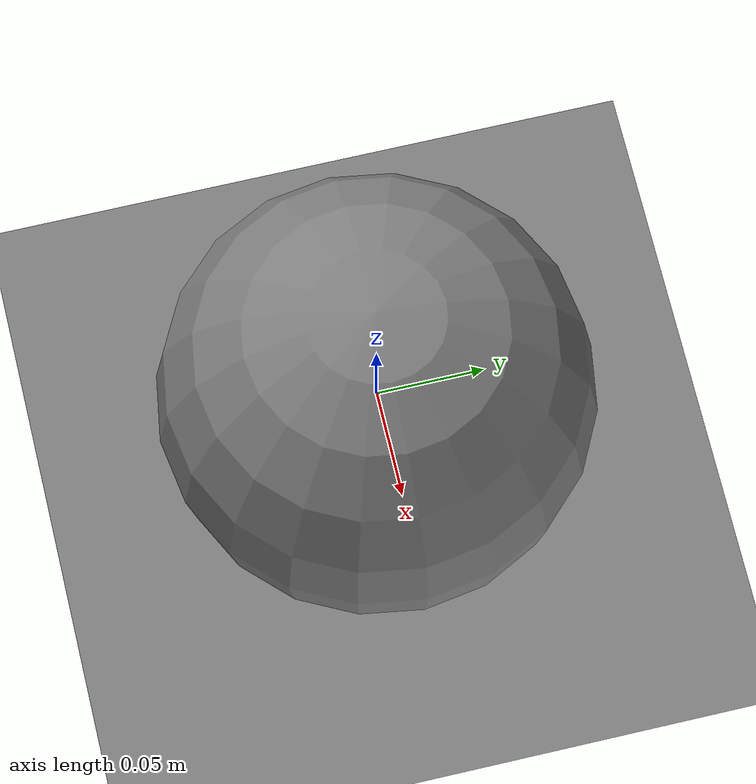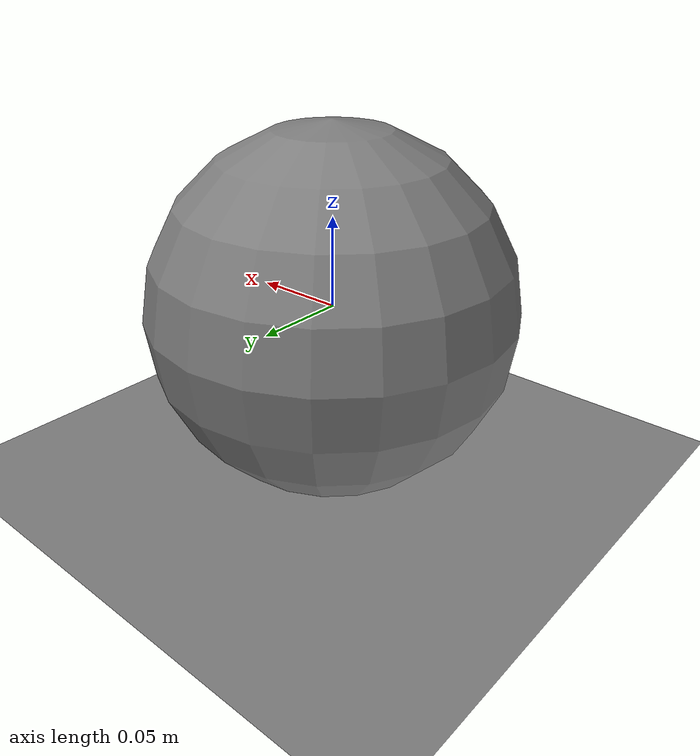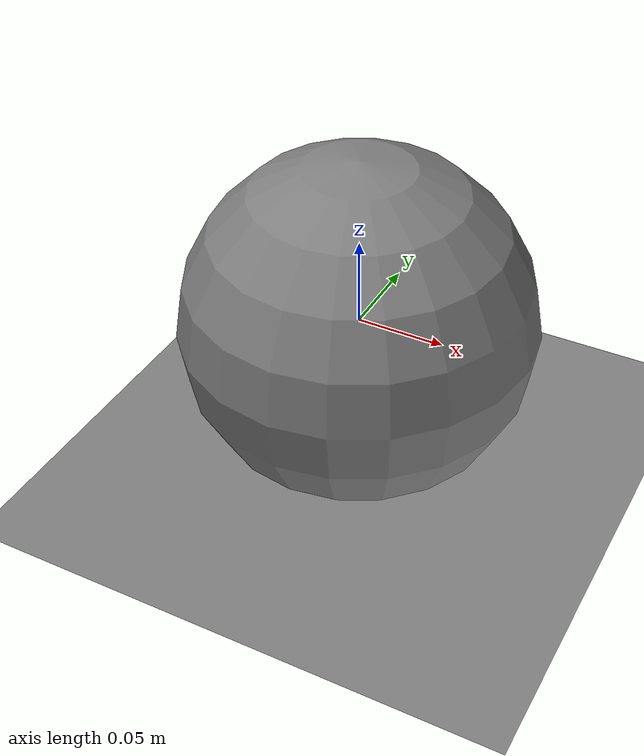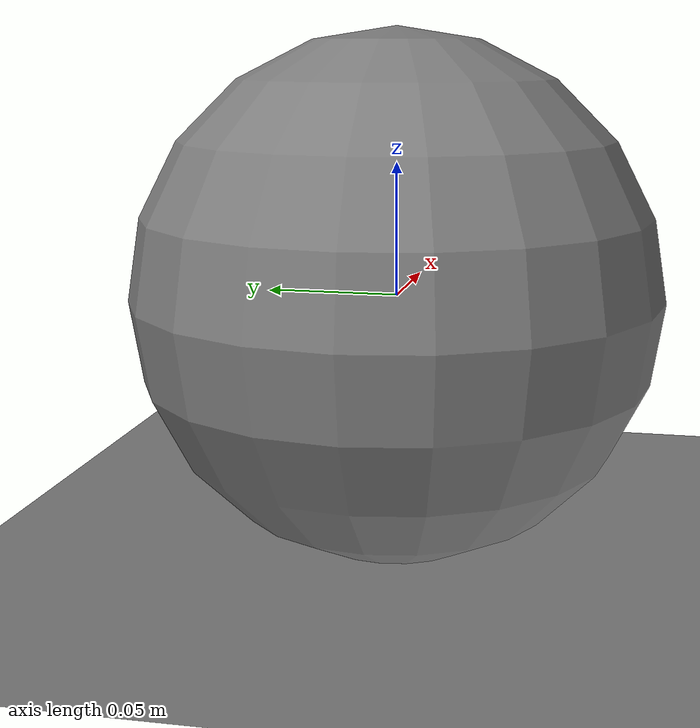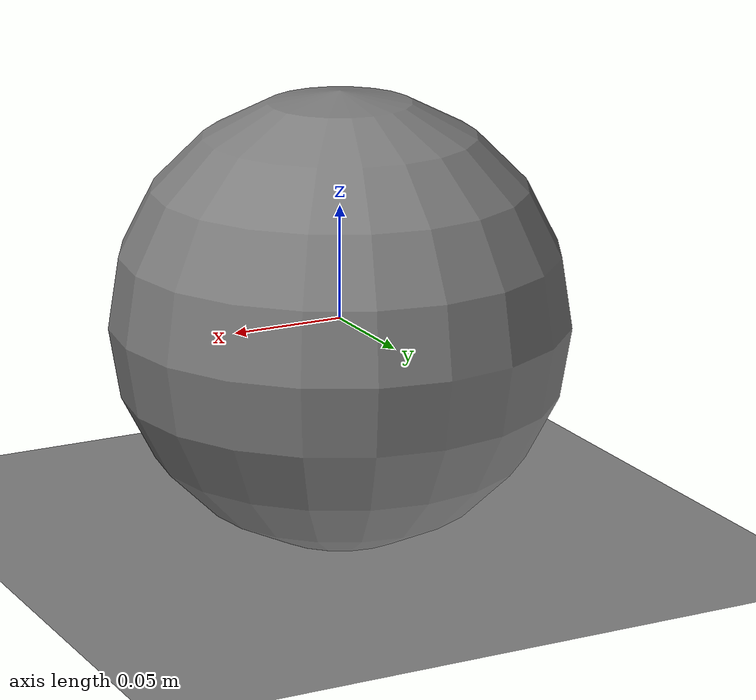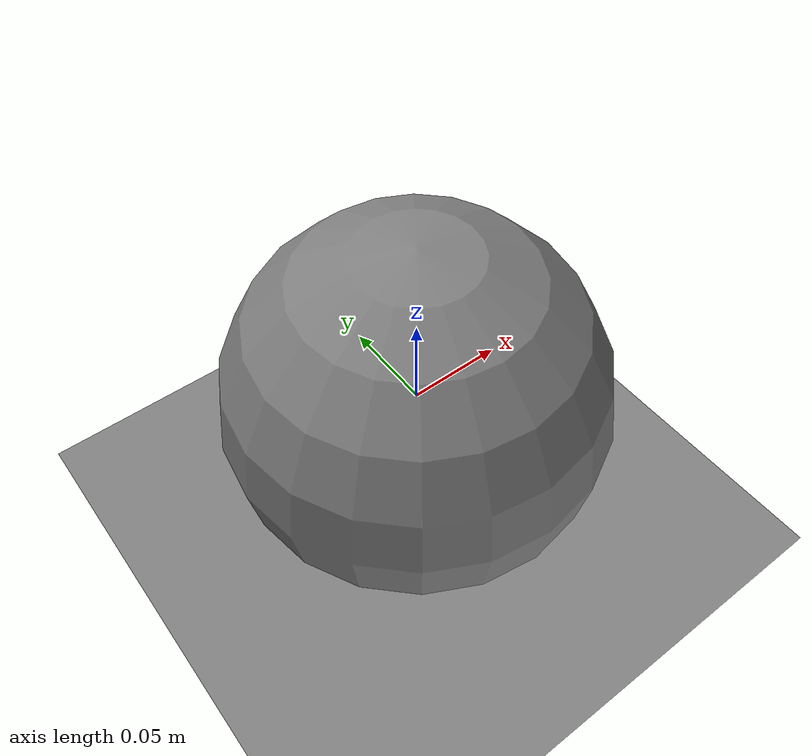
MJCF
<mujoco><option timestep=".0005" integrator="Euler" gravity="0 0 -9.81" solver="Newton" cone="pyramidal" jacobian="auto"><flag constraint="enable" warmstart="disable" island="disable" /></option><worldbody><body name="carrier_0"><freejoint /><inertial pos="0 0 0" mass=".05" diaginertia=".0002 .0002 .0002" /><body><joint name="j" damping=".01" limited="true" frictionloss=".002" range="-1 1" /><geom size=".1" mass="1" /></body></body><geom name="controller_floor" type="plane" size="3 3 .1" pos="0 0 -.095" friction=".6 .01 .001" condim="3" /></worldbody><actuator><pid joint="j" kp=".003" ki=".001" input="pos vel ff" /><pid joint="j" kp=".003" ki=".001" input="pos vel ff" /><pid joint="j" kp=".003" ki=".001" input="pos vel ff" /><pid joint="j" kp=".003" ki=".001" input="pos vel ff" /><pid joint="j" kp=".003" ki=".001" input="pos vel ff" /><pid joint="j" kp=".003" ki=".001" input="pos vel ff" /><pid joint="j" kp=".003" ki=".001" input="pos vel ff" /><pid joint="j" kp=".003" ki=".001" input="pos vel ff" /><pid joint="j" kp=".003" ki=".001" input="pos vel ff" /><pid joint="j" kp=".003" ki=".001" input="pos vel ff" /><pid joint="j" kp=".003" ki=".001" input="pos vel ff" /><pid joint="j" kp=".003" ki=".001" input="pos vel ff" /><pid joint="j" kp=".003" ki=".001" input="pos vel ff" /><pid joint="j" kp=".003" ki=".001" input="pos vel ff" /><pid joint="j" kp=".003" ki=".001" input="pos vel ff" /><pid joint="j" kp=".003" ki=".001" input="pos vel ff" /><pid joint="j" kp=".003" ki=".001" input="pos vel ff" /><pid joint="j" kp=".003" ki=".001" input="pos vel ff" /><pid joint="j" kp=".003" ki=".001" input="pos vel ff" /><pid joint="j" kp=".003" ki=".001" input="pos vel ff" /><pid joint="j" kp=".003" ki=".001" input="pos vel ff" /><pid joint="j" kp=".003" ki=".001" input="pos vel ff" /><pid joint="j" kp=".003" ki=".001" input="pos vel ff" /><pid joint="j" kp=".003" ki=".001" input="pos vel ff" /><pid joint="j" kp=".003" ki=".001" input="pos vel ff" /><pid joint="j" kp=".003" ki=".001" input="pos vel ff" /><pid joint="j" kp=".003" ki=".001" input="pos vel ff" /><pid joint="j" kp=".003" ki=".001" input="pos vel ff" /><pid joint="j" kp=".003" ki=".001" input="pos vel ff" /><pid joint="j" kp=".003" ki=".001" input="pos vel ff" /><pid joint="j" kp=".003" ki=".001" input="pos vel ff" /><pid joint="j" kp=".003" ki=".001" input="pos vel ff" /><pid joint="j" kp=".003" ki=".001" input="pos vel ff" /><pid joint="j" kp=".003" ki=".001" input="pos vel ff" /><pid joint="j" kp=".003" ki=".001" input="pos vel ff" /><pid joint="j" kp=".003" ki=".001" input="pos vel ff" /><pid joint="j" kp=".003" ki=".001" input="pos vel ff" /><pid joint="j" kp=".003" ki=".001" input="pos vel ff" /><pid joint="j" kp=".003" ki=".001" input="pos vel ff" /><pid joint="j" kp=".003" ki=".001" input="pos vel ff" /><pid joint="j" kp=".003" ki=".001" input="pos vel ff" /><pid joint="j" kp=".003" ki=".001" input="pos vel ff" /><pid joint="j" kp=".003" ki=".001" input="pos vel ff" /><pid joint="j" kp=".003" ki=".001" input="pos vel ff" /><pid joint="j" kp=".003" ki=".001" input="pos vel ff" /><pid joint="j" kp=".003" ki=".001" input="pos vel ff" /><pid joint="j" kp=".003" ki=".001" input="pos vel ff" /><pid joint="j" kp=".003" ki=".001" input="pos vel ff" /><pid joint="j" kp=".003" ki=".001" input="pos vel ff" /><pid joint="j" kp=".003" ki=".001" input="pos vel ff" /><pid joint="j" kp=".003" ki=".001" input="pos vel ff" /><pid joint="j" kp=".003" ki=".001" input="pos vel ff" /><pid joint="j" kp=".003" ki=".001" input="pos vel ff" /><pid joint="j" kp=".003" ki=".001" input="pos vel ff" /><pid joint="j" kp=".003" ki=".001" input="pos vel ff" /><pid joint="j" kp=".003" ki=".001" input="pos vel ff" /><pid joint="j" kp=".003" ki=".001" input="pos vel ff" /><pid joint="j" kp=".003" ki=".001" input="pos vel ff" /><pid joint="j" kp=".003" ki=".001" input="pos vel ff" /><pid joint="j" kp=".003" ki=".001" input="pos vel ff" /><pid joint="j" kp=".003" ki=".001" input="pos vel ff" /><pid joint="j" kp=".003" ki=".001" input="pos vel ff" /><pid joint="j" kp=".003" ki=".001" input="pos vel ff" /><pid joint="j" kp=".003" ki=".001" input="pos vel ff" /></actuator></mujoco>
